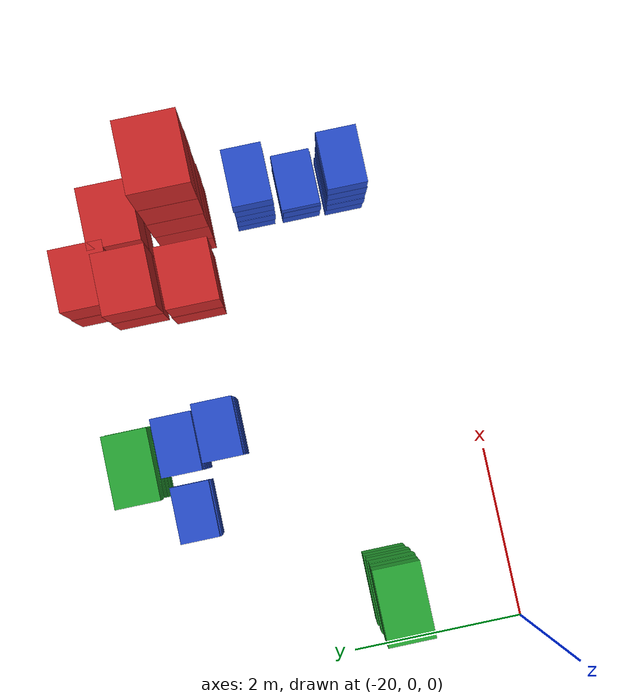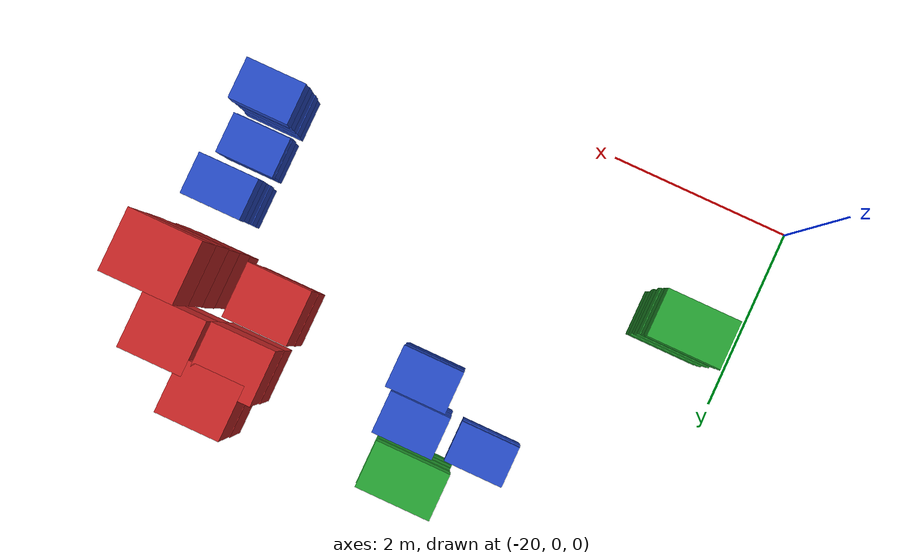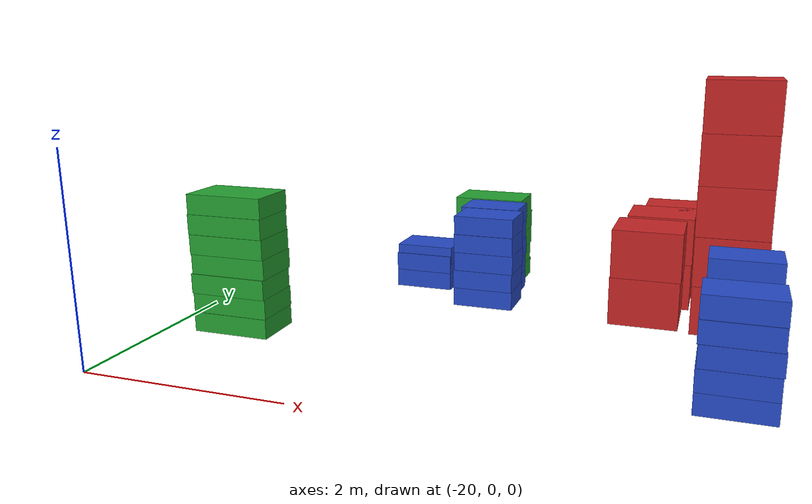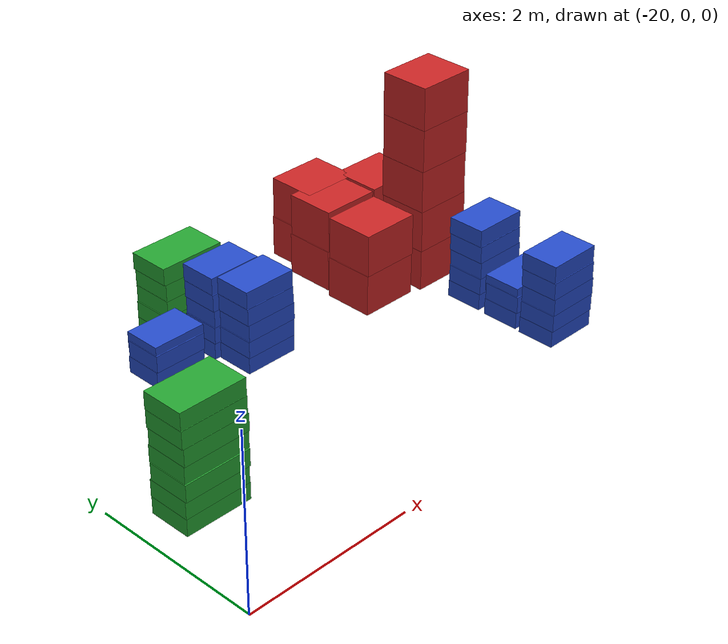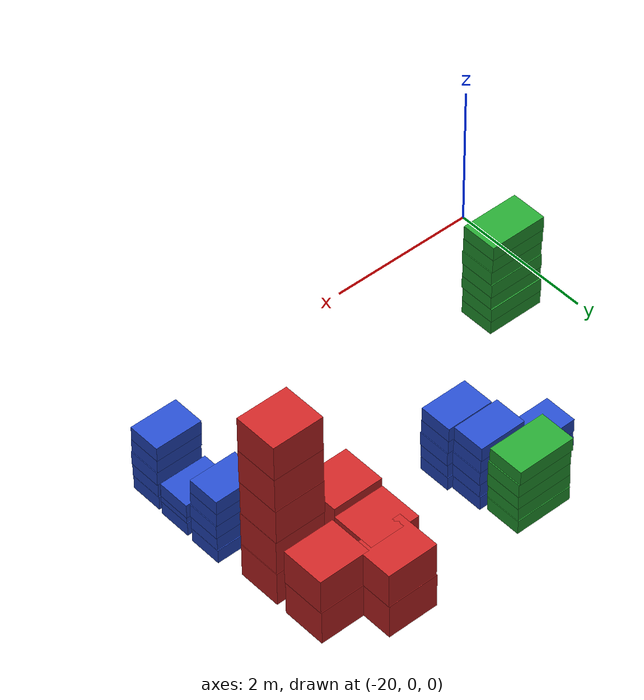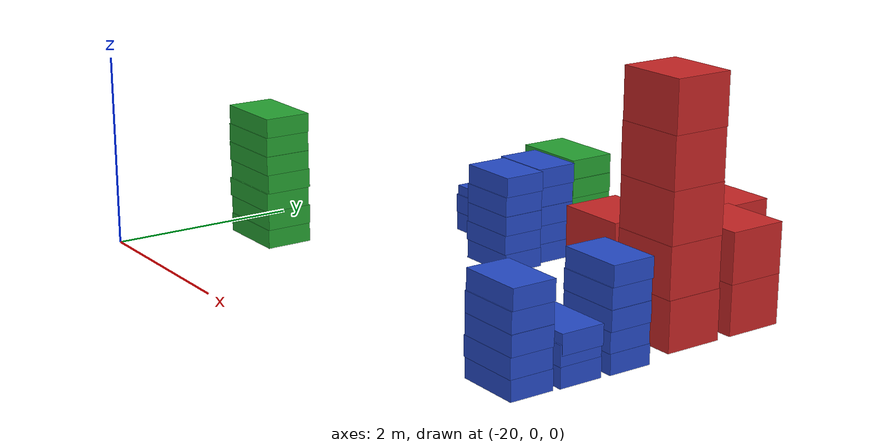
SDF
<sdf version="1.4">
 <model name="factory_baggage_group_A">
  <model name="baggage_B_x5_3">
   <model name="baggage_B_0">
    <static>1</static>
    <link name="link">
     <collision name="collision"><geometry><box><size>0.65 0.45 0.2</size></box></geometry></collision>
     <visual name="visual">
      <geometry><box><size>0.65 0.45 0.2</size></box></geometry>
      <material>
       <script><uri>file://media/materials/scripts/gazebo.material</uri><name>Gazebo/Blue</name></script>
      </material>
     </visual>
    </link>
    <pose>0 0 0.1 0 -0 0</pose>
   </model>
   <model name="baggage_B_1">
    <static>1</static>
    <link name="link">
     <collision name="collision"><geometry><box><size>0.65 0.45 0.2</size></box></geometry></collision>
     <visual name="visual">
      <geometry><box><size>0.65 0.45 0.2</size></box></geometry>
      <material>
       <script><uri>file://media/materials/scripts/gazebo.material</uri><name>Gazebo/Blue</name></script>
      </material>
     </visual>
    </link>
    <pose>-0.0014 -0.0091 0.3 0 -0 0</pose>
   </model>
   <model name="baggage_B_2">
    <static>1</static>
    <link name="link">
     <collision name="collision"><geometry><box><size>0.65 0.45 0.2</size></box></geometry></collision>
     <visual name="visual">
      <geometry><box><size>0.65 0.45 0.2</size></box></geometry>
      <material>
       <script><uri>file://media/materials/scripts/gazebo.material</uri><name>Gazebo/Blue</name></script>
      </material>
     </visual>
    </link>
    <pose>0.0076 -0.0066 0.5 0 -0 0</pose>
   </model>
   <model name="baggage_B_3">
    <static>1</static>
    <link name="link">
     <collision name="collision"><geometry><box><size>0.65 0.45 0.2</size></box></geometry></collision>
     <visual name="visual">
      <geometry><box><size>0.65 0.45 0.2</size></box></geometry>
      <material>
       <script><uri>file://media/materials/scripts/gazebo.material</uri><name>Gazebo/Blue</name></script>
      </material>
     </visual>
    </link>
    <pose>0 -0.0032 0.7 0 -0 0</pose>
   </model>
   <model name="baggage_B_4">
    <static>1</static>
    <link name="link">
     <collision name="collision"><geometry><box><size>0.65 0.45 0.2</size></box></geometry></collision>
     <visual name="visual">
      <geometry><box><size>0.65 0.45 0.2</size></box></geometry>
      <material>
       <script><uri>file://media/materials/scripts/gazebo.material</uri><name>Gazebo/Blue</name></script>
      </material>
     </visual>
    </link>
    <pose>0.0023 0.0073 0.9 0 -0 0</pose>
   </model>
   <pose>-14.5224 1.03384 0 0 -0 0</pose>
  </model>
  <model name="baggage_B_x3_2">
   <model name="baggage_B_0">
    <static>1</static>
    <link name="link">
     <collision name="collision"><geometry><box><size>0.65 0.45 0.2</size></box></geometry></collision>
     <visual name="visual">
      <geometry><box><size>0.65 0.45 0.2</size></box></geometry>
      <material>
       <script><uri>file://media/materials/scripts/gazebo.material</uri><name>Gazebo/Blue</name></script>
      </material>
     </visual>
    </link>
    <pose>0 0 0.1 0 -0 0</pose>
   </model>
   <model name="baggage_B_1">
    <static>1</static>
    <link name="link">
     <collision name="collision"><geometry><box><size>0.65 0.45 0.2</size></box></geometry></collision>
     <visual name="visual">
      <geometry><box><size>0.65 0.45 0.2</size></box></geometry>
      <material>
       <script><uri>file://media/materials/scripts/gazebo.material</uri><name>Gazebo/Blue</name></script>
      </material>
     </visual>
    </link>
    <pose>0.0028 -0.0086 0.3 0 -0 0</pose>
   </model>
   <model name="baggage_B_2">
    <static>1</static>
    <link name="link">
     <collision name="collision"><geometry><box><size>0.65 0.45 0.2</size></box></geometry></collision>
     <visual name="visual">
      <geometry><box><size>0.65 0.45 0.2</size></box></geometry>
      <material>
       <script><uri>file://media/materials/scripts/gazebo.material</uri><name>Gazebo/Blue</name></script>
      </material>
     </visual>
    </link>
    <pose>0.0092 0.006 0.4 0 -0 0</pose>
   </model>
   <pose>-14.5084 1.54815 0 0 -0 0</pose>
  </model>
  <model name="baggage_B_x5_4">
   <model name="baggage_B_0">
    <static>1</static>
    <link name="link">
     <collision name="collision"><geometry><box><size>0.65 0.45 0.2</size></box></geometry></collision>
     <visual name="visual">
      <geometry><box><size>0.65 0.45 0.2</size></box></geometry>
      <material>
       <script><uri>file://media/materials/scripts/gazebo.material</uri><name>Gazebo/Blue</name></script>
      </material>
     </visual>
    </link>
    <pose>0 0 0.1 0 -0 0</pose>
   </model>
   <model name="baggage_B_1">
    <static>1</static>
    <link name="link">
     <collision name="collision"><geometry><box><size>0.65 0.45 0.2</size></box></geometry></collision>
     <visual name="visual">
      <geometry><box><size>0.65 0.45 0.2</size></box></geometry>
      <material>
       <script><uri>file://media/materials/scripts/gazebo.material</uri><name>Gazebo/Blue</name></script>
      </material>
     </visual>
    </link>
    <pose>-0.0014 -0.0091 0.3 0 -0 0</pose>
   </model>
   <model name="baggage_B_2">
    <static>1</static>
    <link name="link">
     <collision name="collision"><geometry><box><size>0.65 0.45 0.2</size></box></geometry></collision>
     <visual name="visual">
      <geometry><box><size>0.65 0.45 0.2</size></box></geometry>
      <material>
       <script><uri>file://media/materials/scripts/gazebo.material</uri><name>Gazebo/Blue</name></script>
      </material>
     </visual>
    </link>
    <pose>0.0076 -0.0066 0.5 0 -0 0</pose>
   </model>
   <model name="baggage_B_3">
    <static>1</static>
    <link name="link">
     <collision name="collision"><geometry><box><size>0.65 0.45 0.2</size></box></geometry></collision>
     <visual name="visual">
      <geometry><box><size>0.65 0.45 0.2</size></box></geometry>
      <material>
       <script><uri>file://media/materials/scripts/gazebo.material</uri><name>Gazebo/Blue</name></script>
      </material>
     </visual>
    </link>
    <pose>0 -0.0032 0.7 0 -0 0</pose>
   </model>
   <model name="baggage_B_4">
    <static>1</static>
    <link name="link">
     <collision name="collision"><geometry><box><size>0.65 0.45 0.2</size></box></geometry></collision>
     <visual name="visual">
      <geometry><box><size>0.65 0.45 0.2</size></box></geometry>
      <material>
       <script><uri>file://media/materials/scripts/gazebo.material</uri><name>Gazebo/Blue</name></script>
      </material>
     </visual>
    </link>
    <pose>0.0023 0.0073 0.9 0 -0 0</pose>
   </model>
   <pose>-14.4977 2.09001 0 0 -0 0</pose>
  </model>
  <model name="baggage_D_x7">
   <model name="baggage_D_0">
    <static>1</static>
    <link name="link">
     <collision name="collision"><geometry><box><size>0.8 0.5 0.2</size></box></geometry></collision>
     <visual name="visual">
      <geometry><box><size>0.8 0.5 0.2</size></box></geometry>
      <material>
       <script><uri>file://media/materials/scripts/gazebo.material</uri><name>Gazebo/Green</name></script>
      </material>
     </visual>
    </link>
    <pose>0 0 0.1 0 -0 0</pose>
   </model>
   <model name="baggage_D_1">
    <static>1</static>
    <link name="link">
     <collision name="collision"><geometry><box><size>0.8 0.5 0.2</size></box></geometry></collision>
     <visual name="visual">
      <geometry><box><size>0.8 0.5 0.2</size></box></geometry>
      <material>
       <script><uri>file://media/materials/scripts/gazebo.material</uri><name>Gazebo/Green</name></script>
      </material>
     </visual>
    </link>
    <pose>0.0009 0.0063 0.3 0 -0 0</pose>
   </model>
   <model name="baggage_D_2">
    <static>1</static>
    <link name="link">
     <collision name="collision"><geometry><box><size>0.8 0.5 0.2</size></box></geometry></collision>
     <visual name="visual">
      <geometry><box><size>0.8 0.5 0.2</size></box></geometry>
      <material>
       <script><uri>file://media/materials/scripts/gazebo.material</uri><name>Gazebo/Green</name></script>
      </material>
     </visual>
    </link>
    <pose>0.0011 -0.0098 0.5 0 -0 0</pose>
   </model>
   <model name="baggage_D_3">
    <static>1</static>
    <link name="link">
     <collision name="collision"><geometry><box><size>0.8 0.5 0.2</size></box></geometry></collision>
     <visual name="visual">
      <geometry><box><size>0.8 0.5 0.2</size></box></geometry>
      <material>
       <script><uri>file://media/materials/scripts/gazebo.material</uri><name>Gazebo/Green</name></script>
      </material>
     </visual>
    </link>
    <pose>0.0089 0.0055 0.7 0 -0 0</pose>
   </model>
   <model name="baggage_D_4">
    <static>1</static>
    <link name="link">
     <collision name="collision"><geometry><box><size>0.8 0.5 0.2</size></box></geometry></collision>
     <visual name="visual">
      <geometry><box><size>0.8 0.5 0.2</size></box></geometry>
      <material>
       <script><uri>file://media/materials/scripts/gazebo.material</uri><name>Gazebo/Green</name></script>
      </material>
     </visual>
    </link>
    <pose>0.009 -0.0056 0.9 0 -0 0</pose>
   </model>
   <model name="baggage_D_5">
    <static>1</static>
    <link name="link">
     <collision name="collision"><geometry><box><size>0.8 0.5 0.2</size></box></geometry></collision>
     <visual name="visual">
      <geometry><box><size>0.8 0.5 0.2</size></box></geometry>
      <material>
       <script><uri>file://media/materials/scripts/gazebo.material</uri><name>Gazebo/Green</name></script>
      </material>
     </visual>
    </link>
    <pose>0.0001 0.0013 1.1 0 -0 0</pose>
   </model>
   <model name="baggage_D_6">
    <static>1</static>
    <link name="link">
     <collision name="collision"><geometry><box><size>0.8 0.5 0.2</size></box></geometry></collision>
     <visual name="visual">
      <geometry><box><size>0.8 0.5 0.2</size></box></geometry>
      <material>
       <script><uri>file://media/materials/scripts/gazebo.material</uri><name>Gazebo/Green</name></script>
      </material>
     </visual>
    </link>
    <pose>0.0019 0.009 1.3 0 -0 0</pose>
   </model>
   <pose>-19.284 1.43551 0 0 -0 0</pose>
  </model>
  <model name="baggage_A_x5_0">
   <model name="baggage_A_0">
    <static>1</static>
    <link name="link">
     <collision name="collision"><geometry><box><size>0.7 0.6 0.5</size></box></geometry></collision>
     <visual name="visual">
      <geometry><box><size>0.7 0.6 0.5</size></box></geometry>
      <material>
       <script><uri>file://media/materials/scripts/gazebo.material</uri><name>Gazebo/Red</name></script>
      </material>
     </visual>
    </link>
    <pose>0 0 0.25 0 -0 0</pose>
   </model>
   <model name="baggage_A_1">
    <static>1</static>
    <link name="link">
     <collision name="collision"><geometry><box><size>0.7 0.6 0.5</size></box></geometry></collision>
     <visual name="visual">
      <geometry><box><size>0.7 0.6 0.5</size></box></geometry>
      <material>
       <script><uri>file://media/materials/scripts/gazebo.material</uri><name>Gazebo/Red</name></script>
      </material>
     </visual>
    </link>
    <pose>-0.0046 -0.0065 0.75 0 -0 0</pose>
   </model>
   <model name="baggage_A_2">
    <static>1</static>
    <link name="link">
     <collision name="collision"><geometry><box><size>0.7 0.6 0.5</size></box></geometry></collision>
     <visual name="visual">
      <geometry><box><size>0.7 0.6 0.5</size></box></geometry>
      <material>
       <script><uri>file://media/materials/scripts/gazebo.material</uri><name>Gazebo/Red</name></script>
      </material>
     </visual>
    </link>
    <pose>-0.0064 -0.0011 1.25 0 -0 0</pose>
   </model>
   <model name="baggage_A_3">
    <static>1</static>
    <link name="link">
     <collision name="collision"><geometry><box><size>0.7 0.6 0.5</size></box></geometry></collision>
     <visual name="visual">
      <geometry><box><size>0.7 0.6 0.5</size></box></geometry>
      <material>
       <script><uri>file://media/materials/scripts/gazebo.material</uri><name>Gazebo/Red</name></script>
      </material>
     </visual>
    </link>
    <pose>-0.0044 -0.0061 1.75 0 -0 0</pose>
   </model>
   <model name="baggage_A_4">
    <static>1</static>
    <link name="link">
     <collision name="collision"><geometry><box><size>0.7 0.6 0.5</size></box></geometry></collision>
     <visual name="visual">
      <geometry><box><size>0.7 0.6 0.5</size></box></geometry>
      <material>
       <script><uri>file://media/materials/scripts/gazebo.material</uri><name>Gazebo/Red</name></script>
      </material>
     </visual>
    </link>
    <pose>-0.0013 -0.0026 2.25 0 -0 0</pose>
   </model>
   <pose>-14.6127 2.91654 0 0 -0 0</pose>
  </model>
  <model name="baggage_A_x2_2">
   <model name="baggage_A_0">
    <static>1</static>
    <link name="link">
     <collision name="collision"><geometry><box><size>0.7 0.6 0.5</size></box></geometry></collision>
     <visual name="visual">
      <geometry><box><size>0.7 0.6 0.5</size></box></geometry>
      <material>
       <script><uri>file://media/materials/scripts/gazebo.material</uri><name>Gazebo/Red</name></script>
      </material>
     </visual>
    </link>
    <pose>0 0 0.25 0 -0 0</pose>
   </model>
   <model name="baggage_A_1">
    <static>1</static>
    <link name="link">
     <collision name="collision"><geometry><box><size>0.7 0.6 0.5</size></box></geometry></collision>
     <visual name="visual">
      <geometry><box><size>0.7 0.6 0.5</size></box></geometry>
      <material>
       <script><uri>file://media/materials/scripts/gazebo.material</uri><name>Gazebo/Red</name></script>
      </material>
     </visual>
    </link>
    <pose>0.0063 -0.0062 0.75 0 -0 0</pose>
   </model>
   <pose>-15.4256 2.96278 0 0 -0 0</pose>
  </model>
  <model name="baggage_A_x2_3">
   <model name="baggage_A_0">
    <static>1</static>
    <link name="link">
     <collision name="collision"><geometry><box><size>0.7 0.6 0.5</size></box></geometry></collision>
     <visual name="visual">
      <geometry><box><size>0.7 0.6 0.5</size></box></geometry>
      <material>
       <script><uri>file://media/materials/scripts/gazebo.material</uri><name>Gazebo/Red</name></script>
      </material>
     </visual>
    </link>
    <pose>0 0 0.25 0 -0 0</pose>
   </model>
   <model name="baggage_A_1">
    <static>1</static>
    <link name="link">
     <collision name="collision"><geometry><box><size>0.7 0.6 0.5</size></box></geometry></collision>
     <visual name="visual">
      <geometry><box><size>0.7 0.6 0.5</size></box></geometry>
      <material>
       <script><uri>file://media/materials/scripts/gazebo.material</uri><name>Gazebo/Red</name></script>
      </material>
     </visual>
    </link>
    <pose>0.0063 -0.0062 0.75 0 -0 0</pose>
   </model>
   <pose>-14.6118 3.66384 0 0 -0 0</pose>
  </model>
  <model name="baggage_A_x2_4">
   <model name="baggage_A_0">
    <static>1</static>
    <link name="link">
     <collision name="collision"><geometry><box><size>0.7 0.6 0.5</size></box></geometry></collision>
     <visual name="visual">
      <geometry><box><size>0.7 0.6 0.5</size></box></geometry>
      <material>
       <script><uri>file://media/materials/scripts/gazebo.material</uri><name>Gazebo/Red</name></script>
      </material>
     </visual>
    </link>
    <pose>0 0 0.25 0 -0 0</pose>
   </model>
   <model name="baggage_A_1">
    <static>1</static>
    <link name="link">
     <collision name="collision"><geometry><box><size>0.7 0.6 0.5</size></box></geometry></collision>
     <visual name="visual">
      <geometry><box><size>0.7 0.6 0.5</size></box></geometry>
      <material>
       <script><uri>file://media/materials/scripts/gazebo.material</uri><name>Gazebo/Red</name></script>
      </material>
     </visual>
    </link>
    <pose>0.0063 -0.0062 0.75 0 -0 0</pose>
   </model>
   <pose>-15.3543 3.64845 0 0 -0 0</pose>
  </model>
  <model name="baggage_A_x2_11">
   <model name="baggage_A_0">
    <static>1</static>
    <link name="link">
     <collision name="collision"><geometry><box><size>0.7 0.6 0.5</size></box></geometry></collision>
     <visual name="visual">
      <geometry><box><size>0.7 0.6 0.5</size></box></geometry>
      <material>
       <script><uri>file://media/materials/scripts/gazebo.material</uri><name>Gazebo/Red</name></script>
      </material>
     </visual>
    </link>
    <pose>0 0 0.25 0 -0 0</pose>
   </model>
   <model name="baggage_A_1">
    <static>1</static>
    <link name="link">
     <collision name="collision"><geometry><box><size>0.7 0.6 0.5</size></box></geometry></collision>
     <visual name="visual">
      <geometry><box><size>0.7 0.6 0.5</size></box></geometry>
      <material>
       <script><uri>file://media/materials/scripts/gazebo.material</uri><name>Gazebo/Red</name></script>
      </material>
     </visual>
    </link>
    <pose>0.0063 -0.0062 0.75 0 -0 0</pose>
   </model>
   <pose>-15.221 4.08627 0 0 -0 0</pose>
  </model>
  <model name="baggage_D_x5_9">
   <model name="baggage_D_0">
    <static>1</static>
    <link name="link">
     <collision name="collision"><geometry><box><size>0.8 0.5 0.2</size></box></geometry></collision>
     <visual name="visual">
      <geometry><box><size>0.8 0.5 0.2</size></box></geometry>
      <material>
       <script><uri>file://media/materials/scripts/gazebo.material</uri><name>Gazebo/Green</name></script>
      </material>
     </visual>
    </link>
    <pose>0 0 0.1 0 -0 0</pose>
   </model>
   <model name="baggage_D_1">
    <static>1</static>
    <link name="link">
     <collision name="collision"><geometry><box><size>0.8 0.5 0.2</size></box></geometry></collision>
     <visual name="visual">
      <geometry><box><size>0.8 0.5 0.2</size></box></geometry>
      <material>
       <script><uri>file://media/materials/scripts/gazebo.material</uri><name>Gazebo/Green</name></script>
      </material>
     </visual>
    </link>
    <pose>-0.0065 -0.0092 0.3 0 -0 0</pose>
   </model>
   <model name="baggage_D_2">
    <static>1</static>
    <link name="link">
     <collision name="collision"><geometry><box><size>0.8 0.5 0.2</size></box></geometry></collision>
     <visual name="visual">
      <geometry><box><size>0.8 0.5 0.2</size></box></geometry>
      <material>
       <script><uri>file://media/materials/scripts/gazebo.material</uri><name>Gazebo/Green</name></script>
      </material>
     </visual>
    </link>
    <pose>0.005 -0.0052 0.5 0 -0 0</pose>
   </model>
   <model name="baggage_D_3">
    <static>1</static>
    <link name="link">
     <collision name="collision"><geometry><box><size>0.8 0.5 0.2</size></box></geometry></collision>
     <visual name="visual">
      <geometry><box><size>0.8 0.5 0.2</size></box></geometry>
      <material>
       <script><uri>file://media/materials/scripts/gazebo.material</uri><name>Gazebo/Green</name></script>
      </material>
     </visual>
    </link>
    <pose>0.0074 0.0002 0.7 0 -0 0</pose>
   </model>
   <model name="baggage_D_4">
    <static>1</static>
    <link name="link">
     <collision name="collision"><geometry><box><size>0.8 0.5 0.2</size></box></geometry></collision>
     <visual name="visual">
      <geometry><box><size>0.8 0.5 0.2</size></box></geometry>
      <material>
       <script><uri>file://media/materials/scripts/gazebo.material</uri><name>Gazebo/Green</name></script>
      </material>
     </visual>
    </link>
    <pose>-0.006 0.0081 0.9 0 -0 0</pose>
   </model>
   <pose>-17.3569 3.95598 0 0 -0 0</pose>
  </model>
  <model name="baggage_B_x5_13">
   <model name="baggage_B_0">
    <static>1</static>
    <link name="link">
     <collision name="collision"><geometry><box><size>0.65 0.45 0.2</size></box></geometry></collision>
     <visual name="visual">
      <geometry><box><size>0.65 0.45 0.2</size></box></geometry>
      <material>
       <script><uri>file://media/materials/scripts/gazebo.material</uri><name>Gazebo/Blue</name></script>
      </material>
     </visual>
    </link>
    <pose>0 0 0.1 0 -0 0</pose>
   </model>
   <model name="baggage_B_1">
    <static>1</static>
    <link name="link">
     <collision name="collision"><geometry><box><size>0.65 0.45 0.2</size></box></geometry></collision>
     <visual name="visual">
      <geometry><box><size>0.65 0.45 0.2</size></box></geometry>
      <material>
       <script><uri>file://media/materials/scripts/gazebo.material</uri><name>Gazebo/Blue</name></script>
      </material>
     </visual>
    </link>
    <pose>-0.0014 -0.0091 0.3 0 -0 0</pose>
   </model>
   <model name="baggage_B_2">
    <static>1</static>
    <link name="link">
     <collision name="collision"><geometry><box><size>0.65 0.45 0.2</size></box></geometry></collision>
     <visual name="visual">
      <geometry><box><size>0.65 0.45 0.2</size></box></geometry>
      <material>
       <script><uri>file://media/materials/scripts/gazebo.material</uri><name>Gazebo/Blue</name></script>
      </material>
     </visual>
    </link>
    <pose>0.0076 -0.0066 0.5 0 -0 0</pose>
   </model>
   <model name="baggage_B_3">
    <static>1</static>
    <link name="link">
     <collision name="collision"><geometry><box><size>0.65 0.45 0.2</size></box></geometry></collision>
     <visual name="visual">
      <geometry><box><size>0.65 0.45 0.2</size></box></geometry>
      <material>
       <script><uri>file://media/materials/scripts/gazebo.material</uri><name>Gazebo/Blue</name></script>
      </material>
     </visual>
    </link>
    <pose>0 -0.0032 0.7 0 -0 0</pose>
   </model>
   <model name="baggage_B_4">
    <static>1</static>
    <link name="link">
     <collision name="collision"><geometry><box><size>0.65 0.45 0.2</size></box></geometry></collision>
     <visual name="visual">
      <geometry><box><size>0.65 0.45 0.2</size></box></geometry>
      <material>
       <script><uri>file://media/materials/scripts/gazebo.material</uri><name>Gazebo/Blue</name></script>
      </material>
     </visual>
    </link>
    <pose>0.0023 0.0073 0.9 0 -0 0</pose>
   </model>
   <pose>-17.2132 3.43147 0 0 -0 0</pose>
  </model>
  <model name="baggage_B_x3_13">
   <model name="baggage_B_0">
    <static>1</static>
    <link name="link">
     <collision name="collision"><geometry><box><size>0.65 0.45 0.2</size></box></geometry></collision>
     <visual name="visual">
      <geometry><box><size>0.65 0.45 0.2</size></box></geometry>
      <material>
       <script><uri>file://media/materials/scripts/gazebo.material</uri><name>Gazebo/Blue</name></script>
      </material>
     </visual>
    </link>
    <pose>0 0 0.1 0 -0 0</pose>
   </model>
   <model name="baggage_B_1">
    <static>1</static>
    <link name="link">
     <collision name="collision"><geometry><box><size>0.65 0.45 0.2</size></box></geometry></collision>
     <visual name="visual">
      <geometry><box><size>0.65 0.45 0.2</size></box></geometry>
      <material>
       <script><uri>file://media/materials/scripts/gazebo.material</uri><name>Gazebo/Blue</name></script>
      </material>
     </visual>
    </link>
    <pose>0.0028 -0.0086 0.3 0 -0 0</pose>
   </model>
   <model name="baggage_B_2">
    <static>1</static>
    <link name="link">
     <collision name="collision"><geometry><box><size>0.65 0.45 0.2</size></box></geometry></collision>
     <visual name="visual">
      <geometry><box><size>0.65 0.45 0.2</size></box></geometry>
      <material>
       <script><uri>file://media/materials/scripts/gazebo.material</uri><name>Gazebo/Blue</name></script>
      </material>
     </visual>
    </link>
    <pose>0.0092 0.006 0.4 0 -0 0</pose>
   </model>
   <pose>-17.9994 3.44908 0 0 -0 0</pose>
  </model>
  <model name="baggage_B_x5_14">
   <model name="baggage_B_0">
    <static>1</static>
    <link name="link">
     <collision name="collision"><geometry><box><size>0.65 0.45 0.2</size></box></geometry></collision>
     <visual name="visual">
      <geometry><box><size>0.65 0.45 0.2</size></box></geometry>
      <material>
       <script><uri>file://media/materials/scripts/gazebo.material</uri><name>Gazebo/Blue</name></script>
      </material>
     </visual>
    </link>
    <pose>0 0 0.1 0 -0 0</pose>
   </model>
   <model name="baggage_B_1">
    <static>1</static>
    <link name="link">
     <collision name="collision"><geometry><box><size>0.65 0.45 0.2</size></box></geometry></collision>
     <visual name="visual">
      <geometry><box><size>0.65 0.45 0.2</size></box></geometry>
      <material>
       <script><uri>file://media/materials/scripts/gazebo.material</uri><name>Gazebo/Blue</name></script>
      </material>
     </visual>
    </link>
    <pose>-0.0014 -0.0091 0.3 0 -0 0</pose>
   </model>
   <model name="baggage_B_2">
    <static>1</static>
    <link name="link">
     <collision name="collision"><geometry><box><size>0.65 0.45 0.2</size></box></geometry></collision>
     <visual name="visual">
      <geometry><box><size>0.65 0.45 0.2</size></box></geometry>
      <material>
       <script><uri>file://media/materials/scripts/gazebo.material</uri><name>Gazebo/Blue</name></script>
      </material>
     </visual>
    </link>
    <pose>0.0076 -0.0066 0.5 0 -0 0</pose>
   </model>
   <model name="baggage_B_3">
    <static>1</static>
    <link name="link">
     <collision name="collision"><geometry><box><size>0.65 0.45 0.2</size></box></geometry></collision>
     <visual name="visual">
      <geometry><box><size>0.65 0.45 0.2</size></box></geometry>
      <material>
       <script><uri>file://media/materials/scripts/gazebo.material</uri><name>Gazebo/Blue</name></script>
      </material>
     </visual>
    </link>
    <pose>0 -0.0032 0.7 0 -0 0</pose>
   </model>
   <model name="baggage_B_4">
    <static>1</static>
    <link name="link">
     <collision name="collision"><geometry><box><size>0.65 0.45 0.2</size></box></geometry></collision>
     <visual name="visual">
      <geometry><box><size>0.65 0.45 0.2</size></box></geometry>
      <material>
       <script><uri>file://media/materials/scripts/gazebo.material</uri><name>Gazebo/Blue</name></script>
      </material>
     </visual>
    </link>
    <pose>0.0023 0.0073 0.9 0 -0 0</pose>
   </model>
   <pose>-17.1445 2.96904 0 0 -0 0</pose>
  </model>
 </model>
</sdf>
